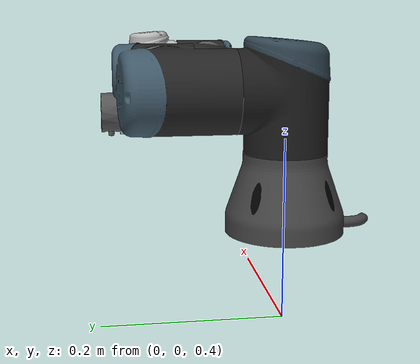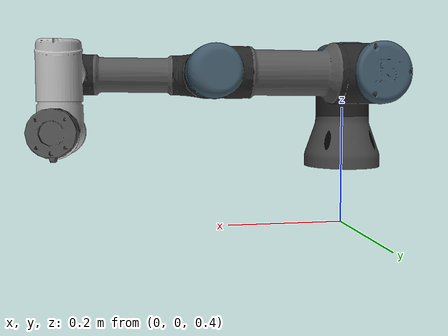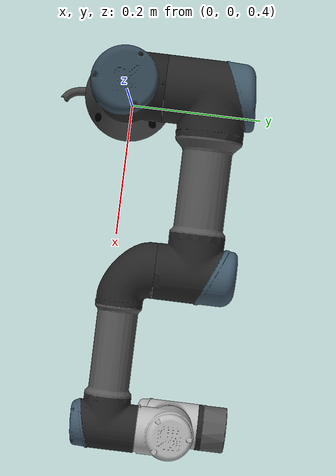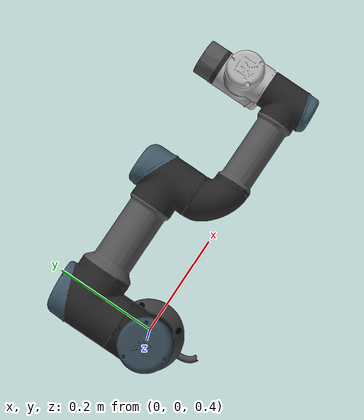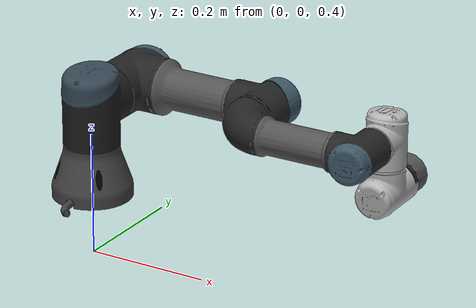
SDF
<sdf version='1.6'>
  <model name='ur3'>
    <link name='ur3_base_link'>
      <pose frame=''>0 0 0.5 0 -0 0</pose>
      <inertial>
        <pose frame=''>0 0 0 0 -0 0</pose>
        <mass>2</mass>
        <inertia>
          <ixx>0.00305317</ixx>
          <ixy>0</ixy>
          <ixz>0</ixz>
          <iyy>0.00305317</iyy>
          <iyz>0</iyz>
          <izz>0.005625</izz>
        </inertia>
      </inertial>
      <collision name='ur3_base_link_collision'>
        <pose frame=''>0 0 0 0 -0 0</pose>
        <geometry>
          <mesh>
            <scale>1 1 1</scale>
            <uri>model://ur_description/meshes/ur3/collision/base.stl</uri>
          </mesh>
        </geometry>
        <surface>
          <contact>
            <ode/>
          </contact>
          <friction>
            <ode/>
          </friction>
        </surface>
      </collision>
      <visual name='ur3_base_link_visual'>
        <pose frame=''>0 0 0 0 -0 0</pose>
        <geometry>
          <mesh>
            <scale>1 1 1</scale>
            <uri>model://ur_description/meshes/ur3/visual/base.dae</uri>
          </mesh>
        </geometry>
        <material>
          <script>
            <uri>__default__</uri>
            <name>__default__</name>
          </script>
        </material>
      </visual>
      <gravity>1</gravity>
      <velocity_decay/>
      <self_collide>1</self_collide>
    </link>
    <joint name='world_to_base' type='fixed'>
      <child>ur3_base_link</child>
      <parent>world</parent>
    </joint>
    <link name='shoulder_link'>
      <pose frame=''>0 0 0.6519 0 -0 0</pose>
      <inertial>
        <pose frame=''>0 0 0 0 -0 0</pose>
        <mass>2</mass>
        <inertia>
          <ixx>0.00809316</ixx>
          <ixy>0</ixy>
          <ixz>0</ixz>
          <iyy>0.00809316</iyy>
          <iyz>0</iyz>
          <izz>0.005625</izz>
        </inertia>
      </inertial>
      <collision name='shoulder_link_collision'>
        <pose frame=''>0 0 0 0 -0 0</pose>
        <geometry>
          <mesh>
            <scale>1 1 1</scale>
            <uri>model://ur_description/meshes/ur3/collision/shoulder.stl</uri>
          </mesh>
        </geometry>
        <surface>
          <contact>
            <ode/>
          </contact>
          <friction>
            <ode/>
          </friction>
        </surface>
      </collision>
      <visual name='shoulder_link_visual'>
        <pose frame=''>0 0 0 0 -0 0</pose>
        <geometry>
          <mesh>
            <scale>1 1 1</scale>
            <uri>model://ur_description/meshes/ur3/visual/shoulder.dae</uri>
          </mesh>
        </geometry>
        <material>
          <script>
            <uri>__default__</uri>
            <name>__default__</name>
          </script>
        </material>
      </visual>
      <gravity>1</gravity>
      <velocity_decay/>
      <self_collide>1</self_collide>
    </link>
    <joint name='shoulder_link_joint' type='revolute'>
      <child>shoulder_link</child>
      <parent>ur3_base_link</parent>
      <axis>
        <xyz>0 0 1</xyz>
        <limit>
          <lower>-6.28319</lower>
          <upper>6.28319</upper>
          <effort>330</effort>
          <velocity>2.16</velocity>
        </limit>
        <dynamics>
          <damping>0</damping>
          <friction>0</friction>
          <spring_reference>0</spring_reference>
          <spring_stiffness>0</spring_stiffness>
        </dynamics>
        <use_parent_model_frame>0</use_parent_model_frame>
      </axis>
    </joint>
    <link name='upper_arm_link'>
      <pose frame=''>0 0.1198 0.6519 3.14159 1.57079 3.14159</pose>
      <inertial>
        <pose frame=''>0 0 0.121825 0 -0 0</pose>
        <mass>3.42</mass>
        <inertia>
          <ixx>0.0217285</ixx>
          <ixy>0</ixy>
          <ixz>0</ixz>
          <iyy>0.0217285</iyy>
          <iyz>0</iyz>
          <izz>0.00961875</izz>
        </inertia>
      </inertial>
      <collision name='upper_arm_link_collision'>
        <pose frame=''>0 0 0 0 -0 0</pose>
        <geometry>
          <mesh>
            <scale>1 1 1</scale>
            <uri>model://ur_description/meshes/ur3/collision/upperarm.stl</uri>
          </mesh>
        </geometry>
        <surface>
          <contact>
            <ode/>
          </contact>
          <friction>
            <ode/>
          </friction>
        </surface>
      </collision>
      <visual name='upper_arm_link_visual'>
        <pose frame=''>0 0 0 0 -0 0</pose>
        <geometry>
          <mesh>
            <scale>1 1 1</scale>
            <uri>model://ur_description/meshes/ur3/visual/upperarm.dae</uri>
          </mesh>
        </geometry>
        <material>
          <script>
            <uri>__default__</uri>
            <name>__default__</name>
          </script>
        </material>
      </visual>
      <gravity>1</gravity>
      <velocity_decay/>
      <self_collide>1</self_collide>
    </link>
    <joint name='upper_arm_link_joint' type='revolute'>
      <child>upper_arm_link</child>
      <parent>shoulder_link</parent>
      <axis>
        <xyz>0 1 0</xyz>
        <limit>
          <lower>-6.28319</lower>
          <upper>6.28319</upper>
          <effort>330</effort>
          <velocity>2.16</velocity>
        </limit>
        <dynamics>
          <damping>0</damping>
          <friction>0</friction>
          <spring_reference>0</spring_reference>
          <spring_stiffness>0</spring_stiffness>
        </dynamics>
        <use_parent_model_frame>0</use_parent_model_frame>
      </axis>
    </joint>
    <link name='forearm_link'>
      <pose frame=''>0.24365 0.0273 0.6519 3.14159 1.57079 3.14159</pose>
      <inertial>
        <pose frame=''>0 0 0.106625 0 -0 0</pose>
        <mass>1.26</mass>
        <inertia>
          <ixx>0.00654681</ixx>
          <ixy>0</ixy>
          <ixz>0</ixz>
          <iyy>0.00654681</iyy>
          <iyz>0</iyz>
          <izz>0.00354375</izz>
        </inertia>
      </inertial>
      <collision name='forearm_link_collision'>
        <pose frame=''>0 0 0 0 -0 0</pose>
        <geometry>
          <mesh>
            <scale>1 1 1</scale>
            <uri>model://ur_description/meshes/ur3/collision/forearm.stl</uri>
          </mesh>
        </geometry>
        <surface>
          <contact>
            <ode/>
          </contact>
          <friction>
            <ode/>
          </friction>
        </surface>
      </collision>
      <visual name='forearm_link_visual'>
        <pose frame=''>0 0 0 0 -0 0</pose>
        <geometry>
          <mesh>
            <scale>1 1 1</scale>
            <uri>model://ur_description/meshes/ur3/visual/forearm.dae</uri>
          </mesh>
        </geometry>
        <material>
          <script>
            <uri>__default__</uri>
            <name>__default__</name>
          </script>
        </material>
      </visual>
      <gravity>1</gravity>
      <velocity_decay/>
      <self_collide>1</self_collide>
    </link>
    <joint name='forearm_link_joint' type='revolute'>
      <child>forearm_link</child>
      <parent>upper_arm_link</parent>
      <axis>
        <xyz>0 1 0</xyz>
        <limit>
          <lower>-3.14159</lower>
          <upper>3.14159</upper>
          <effort>150</effort>
          <velocity>3.15</velocity>
        </limit>
        <dynamics>
          <damping>0</damping>
          <friction>0</friction>
          <spring_reference>0</spring_reference>
          <spring_stiffness>0</spring_stiffness>
        </dynamics>
        <use_parent_model_frame>0</use_parent_model_frame>
      </axis>
    </joint>
    <link name='wrist_1_link'>
      <pose frame=''>0.4569 0.0273 0.6519 3.14159 0 3.14159</pose>
      <inertial>
        <pose frame=''>0 0.08505 0 0 -0 0</pose>
        <mass>0.8</mass>
        <inertia>
          <ixx>0.002085</ixx>
          <ixy>0</ixy>
          <ixz>0</ixz>
          <iyy>0.002085</iyy>
          <iyz>0</iyz>
          <izz>0.00225</izz>
        </inertia>
      </inertial>
      <collision name='wrist_1_link_collision'>
        <pose frame=''>0 0 0 0 -0 0</pose>
        <geometry>
          <mesh>
            <scale>1 1 1</scale>
            <uri>model://ur_description/meshes/ur3/collision/wrist1.stl</uri>
          </mesh>
        </geometry>
        <surface>
          <contact>
            <ode/>
          </contact>
          <friction>
            <ode/>
          </friction>
        </surface>
      </collision>
      <visual name='wrist_1_link_visual'>
        <pose frame=''>0 0 0 0 -0 0</pose>
        <geometry>
          <mesh>
            <scale>1 1 1</scale>
            <uri>model://ur_description/meshes/ur3/visual/wrist1.dae</uri>
          </mesh>
        </geometry>
        <material>
          <script>
            <uri>__default__</uri>
            <name>__default__</name>
          </script>
        </material>
      </visual>
      <gravity>1</gravity>
      <velocity_decay/>
      <self_collide>1</self_collide>
    </link>
    <joint name='wrist_1_joint' type='revolute'>
      <child>wrist_1_link</child>
      <parent>forearm_link</parent>
      <axis>
        <xyz>0 1 0</xyz>
        <limit>
          <lower>-6.28319</lower>
          <upper>6.28319</upper>
          <effort>54</effort>
          <velocity>3.2</velocity>
        </limit>
        <dynamics>
          <damping>0</damping>
          <friction>0</friction>
          <spring_reference>0</spring_reference>
          <spring_stiffness>0</spring_stiffness>
        </dynamics>
        <use_parent_model_frame>0</use_parent_model_frame>
      </axis>
    </joint>
    <link name='wrist_2_link'>
      <pose frame=''>0.4569 0.11235 0.6519 3.14159 0 3.14159</pose>
      <inertial>
        <pose frame=''>0 0 0.08535 0 -0 0</pose>
        <mass>0.8</mass>
        <inertia>
          <ixx>0.002085</ixx>
          <ixy>0</ixy>
          <ixz>0</ixz>
          <iyy>0.002085</iyy>
          <iyz>0</iyz>
          <izz>0.00225</izz>
        </inertia>
      </inertial>
      <collision name='wrist_2_link_collision'>
        <pose frame=''>0 0 0 0 -0 0</pose>
        <geometry>
          <mesh>
            <scale>1 1 1</scale>
            <uri>model://ur_description/meshes/ur3/collision/wrist2.stl</uri>
          </mesh>
        </geometry>
        <surface>
          <contact>
            <ode/>
          </contact>
          <friction>
            <ode/>
          </friction>
        </surface>
      </collision>
      <visual name='wrist_2_link_visual'>
        <pose frame=''>0 0 0 0 -0 0</pose>
        <geometry>
          <mesh>
            <scale>1 1 1</scale>
            <uri>model://ur_description/meshes/ur3/visual/wrist2.dae</uri>
          </mesh>
        </geometry>
        <material>
          <script>
            <uri>__default__</uri>
            <name>__default__</name>
          </script>
        </material>
      </visual>
      <gravity>1</gravity>
      <velocity_decay/>
      <self_collide>1</self_collide>
    </link>
    <joint name='wrist_2_joint' type='revolute'>
      <child>wrist_2_link</child>
      <parent>wrist_1_link</parent>
      <axis>
        <xyz>0 0 1</xyz>
        <limit>
          <lower>-6.28319</lower>
          <upper>6.28319</upper>
          <effort>54</effort>
          <velocity>3.2</velocity>
        </limit>
        <dynamics>
          <damping>0</damping>
          <friction>0</friction>
          <spring_reference>0</spring_reference>
          <spring_stiffness>0</spring_stiffness>
        </dynamics>
        <use_parent_model_frame>0</use_parent_model_frame>
      </axis>
    </joint>
    <link name='wrist_3_link'>
      <pose frame=''>0.4569 0.11235 0.56655 3.14159 0 3.14159</pose>
      <inertial>
        <pose frame=''>0 0.080291 0 1.5708 -0 0</pose>
        <mass>4.35</mass>
        <inertia>
          <ixx>0.200265</ixx>
          <ixy>0</ixy>
          <ixz>0</ixz>
          <iyy>0.200265</iyy>
          <iyz>6.30365e-16</iyz>
          <izz>0.200179</izz>
        </inertia>
      </inertial>
      <collision name='wrist_3_link_collision'>
        <pose frame=''>0 0 0 0 -0 0</pose>
        <geometry>
          <mesh>
            <scale>1 1 1</scale>
            <uri>model://ur_description/meshes/ur3/collision/wrist3.stl</uri>
          </mesh>
        </geometry>
        <surface>
          <contact>
            <ode/>
          </contact>
          <friction>
            <ode/>
          </friction>
        </surface>
      </collision>
      <collision name='wrist_3_link_fixed_joint_lump__ee_link_collision_1'>
        <pose frame=''>-0 0.0719 0 0 -0 1.5708</pose>
        <geometry>
          <box>
            <size>0.01 0.01 0.01</size>
          </box>
        </geometry>
        <surface>
          <contact>
            <ode/>
          </contact>
          <friction>
            <ode/>
          </friction>
        </surface>
      </collision>
      <visual name='wrist_3_link_visual'>
        <pose frame=''>0 0 0 0 -0 0</pose>
        <geometry>
          <mesh>
            <scale>1 1 1</scale>
            <uri>model://ur_description/meshes/ur3/visual/wrist3.dae</uri>
          </mesh>
        </geometry>
        <material>
          <script>
            <uri>__default__</uri>
            <name>__default__</name>
          </script>
        </material>
      </visual>
      <velocity_decay/>
      <gravity>1</gravity>
      <velocity_decay/>
      <self_collide>1</self_collide>
    </link>
    <joint name='wrist_3_joint' type='revolute'>
      <child>wrist_3_link</child>
      <parent>wrist_2_link</parent>
      <axis>
        <xyz>0 1 0</xyz>
        <limit>
          <lower>-6.28319</lower>
          <upper>6.28319</upper>
          <effort>54</effort>
          <velocity>3.2</velocity>
        </limit>
        <dynamics>
          <damping>0</damping>
          <friction>0</friction>
          <spring_reference>0</spring_reference>
          <spring_stiffness>0</spring_stiffness>
        </dynamics>
        <use_parent_model_frame>0</use_parent_model_frame>
      </axis>
    </joint>
    <static>0</static>
    <plugin name='ft_sensor' filename='libgazebo_ros_ft_sensor.so'>
      <updateRate>10.0</updateRate>
      <topicName>ft_sensor</topicName>
      <jointName>ee_fixed_joint</jointName>
    </plugin>
  </model>
</sdf>
